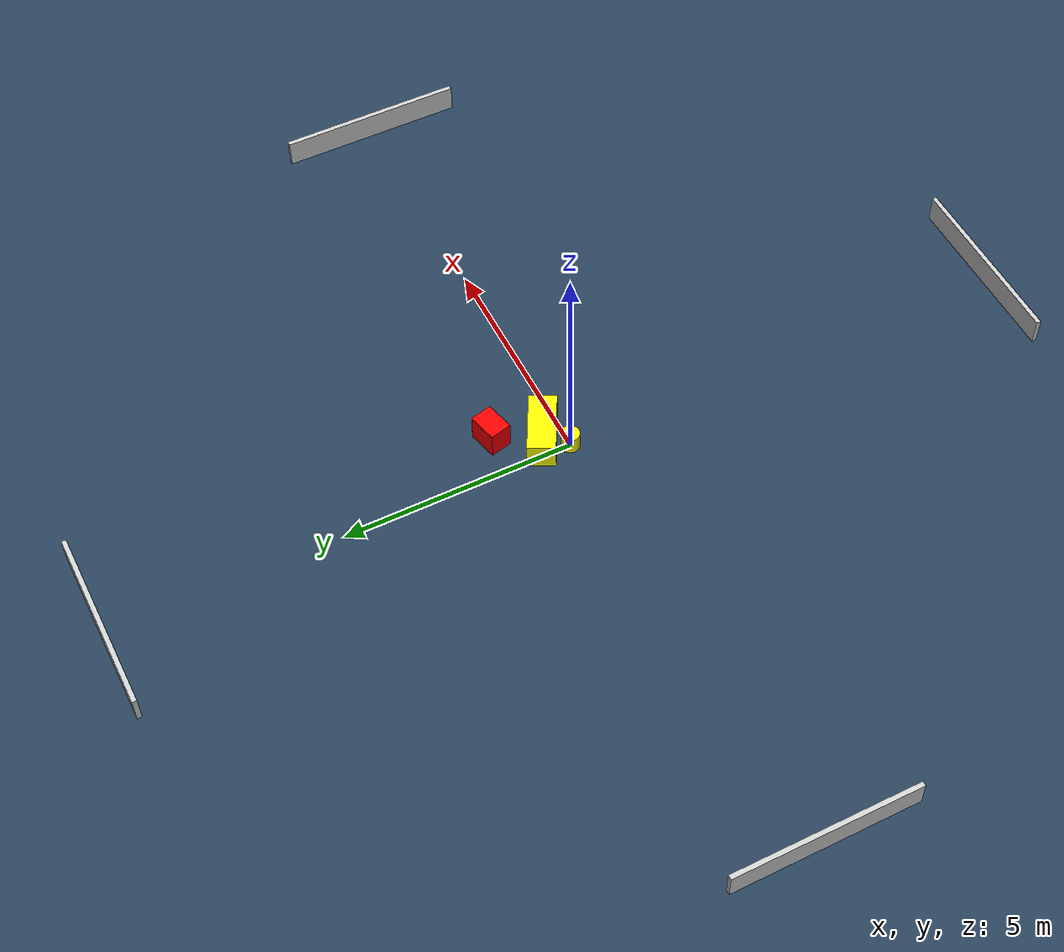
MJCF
<?xml version="1.0" ?>
<mujoco model="generated_environment">
  <option timestep="0.01" integrator="RK4" cone="elliptic"/>
  <default>
    <geom density="1"/>
  </default>
  <asset>
    <texture builtin="gradient" height="3072" name="skybox" rgb1="0.3 0.5 0.7" rgb2="0 0 0" type="skybox" width="512"/>
    <texture builtin="checker" height="300" name="groundplane" rgb1="0.2 0.3 0.4" rgb2="0.1 0.2 0.3" type="2d" width="300"/>
    <material name="groundplane" reflectance="0.2" texrepeat="5 5" texture="groundplane"/>
  </asset>
  <worldbody>
    <light dir="0 0 -1" directional="true" pos="0 0 1.5"/>
    <geom condim="3" friction="0.5 0.005 0.001" material="groundplane" name="floor" pos="0 0 0" size="0 0 0.05" type="plane"/>
    <body name="walls">
      <geom name="wall_1" condim="4" pos="-10.0 0.0 0.3" rgba="0.800000011920929 0.800000011920929 0.800000011920929 1.0" size="0.05 2.0 0.3" type="box"/>
      <geom name="wall_2" condim="4" pos="10.0 0.0 0.3" rgba="0.800000011920929 0.800000011920929 0.800000011920929 1.0" size="0.05 2.0 0.3" type="box"/>
      <geom name="wall_3" condim="4" pos="0.0 -10.0 0.3" rgba="0.800000011920929 0.800000011920929 0.800000011920929 1.0" size="2.0 0.05 0.3" type="box"/>
      <geom name="wall_4" condim="4" pos="0.0 10.0 0.3" rgba="0.800000011920929 0.800000011920929 0.800000011920929 1.0" size="2.0 0.05 0.3" type="box"/>
    </body>
    <body name="robot">
      <joint name="joint_x" type="slide" pos="0 0 0" axis="1 0 0"/>
      <joint name="joint_y" type="slide" pos="0 0 0" axis="0 1 0"/>
      <geom name="robot" type="cylinder" pos="0.0 0.0 0.2" size="0.2 0.2 0.0" mass="5.0" friction="1.0 0.005 0.0001" condim="4" rgba="1.0 1.0 0.0 1.0"/>
    </body>
    <body name="obstacle_1_movable">
      <geom name="obstacle_1_movable" condim="4" pos="0.39091430913118613 0.4432454323744483 0.3" euler="0 0 62.22457939581965" friction="0.0 0.005 0.001" rgba="1.0 1.0 0.0 1.0" size="0.2954572831311693 0.6726901813106891 0.3" type="box" mass="0.1"/>
      <joint type="free"/>
    </body>
    <body name="obstacle_2_static">
      <geom name="obstacle_2_static" condim="4" pos="0.8485129238499758 1.3707702313309718 0.3" euler="0 0 104.03691965848247" friction="0.0 0.005 0.001" rgba="1.0 0.0 0.0 1.0" size="0.23932152438490478 0.3237827255451551 0.3" type="box"/>
    </body>
  </worldbody>
  <actuator>
    <motor name="actuator_x" joint="joint_x" gear="1" ctrlrange="-1 1"/>
    <motor name="actuator_y" joint="joint_y" gear="1" ctrlrange="-1 1"/>
  </actuator>
</mujoco>
